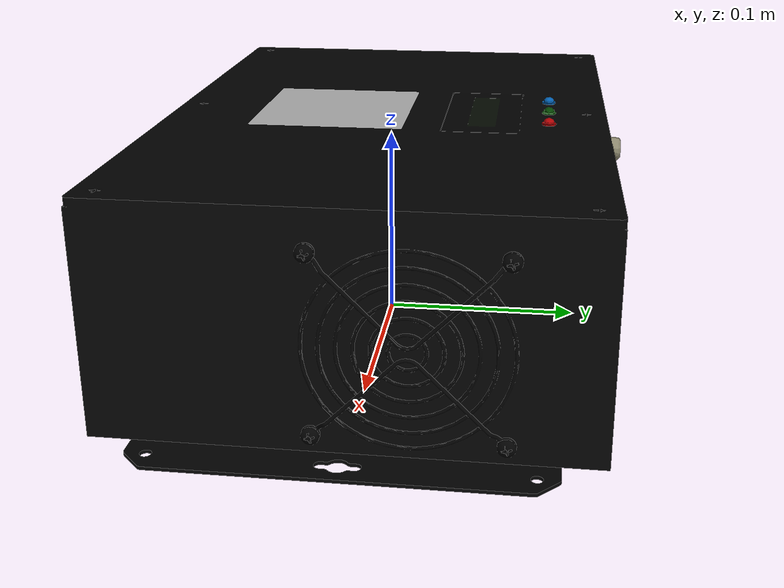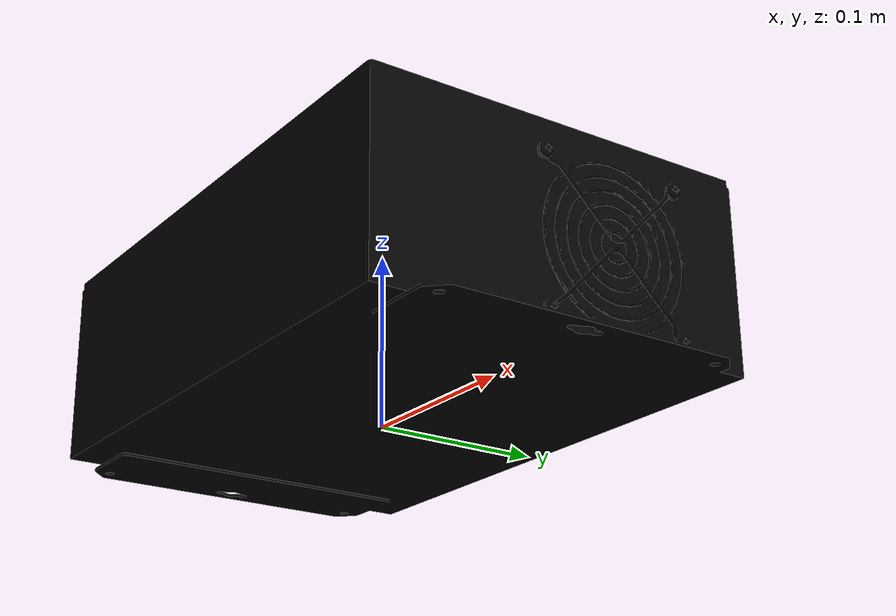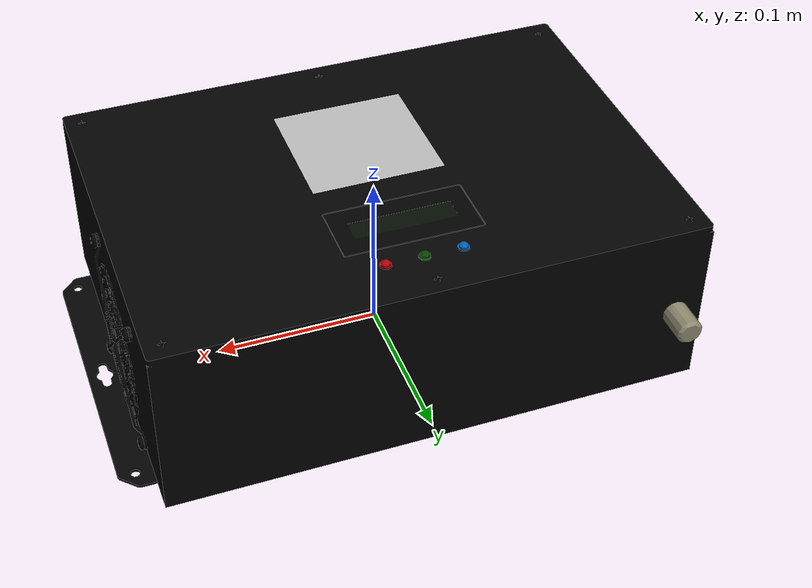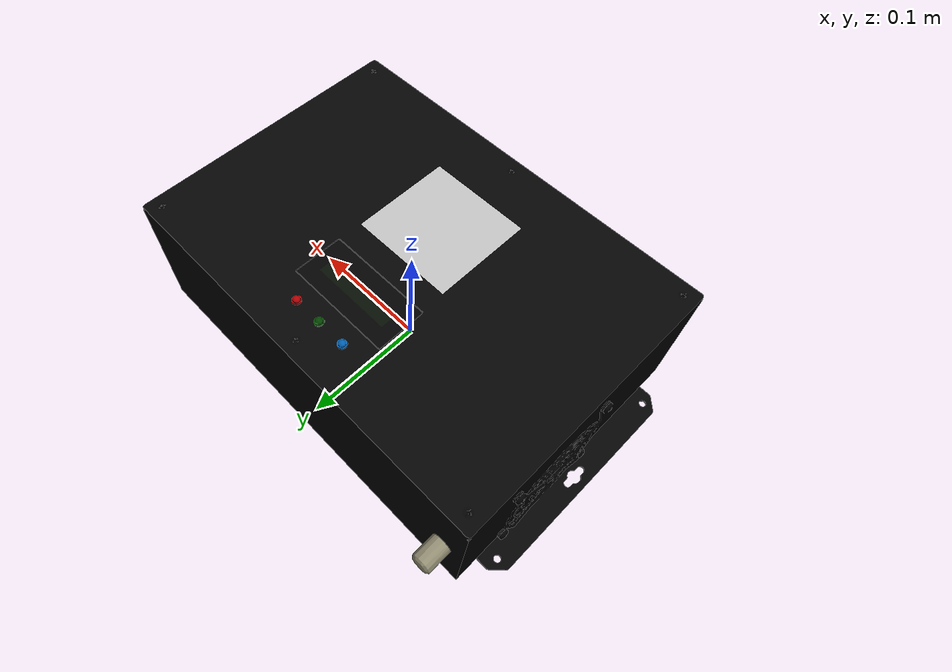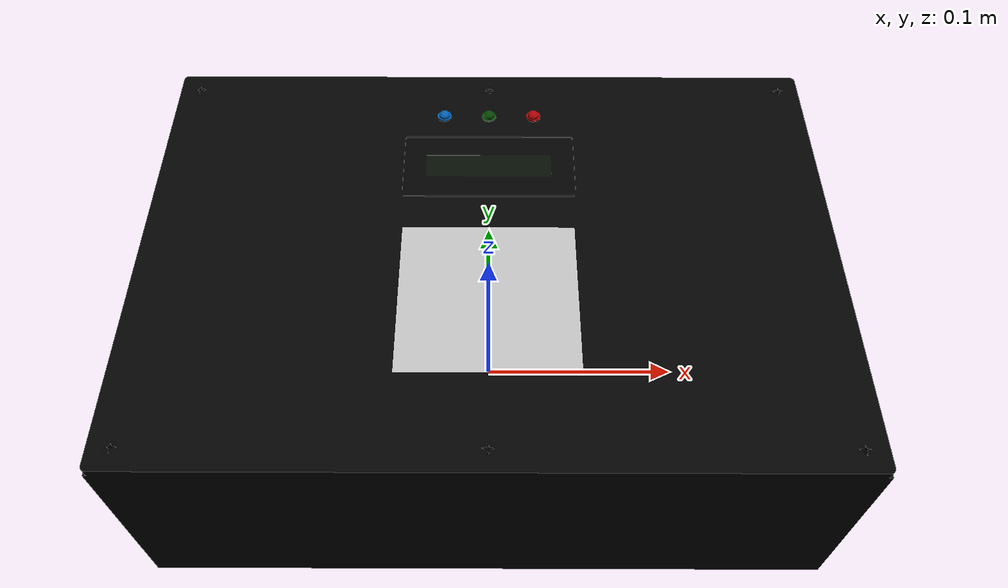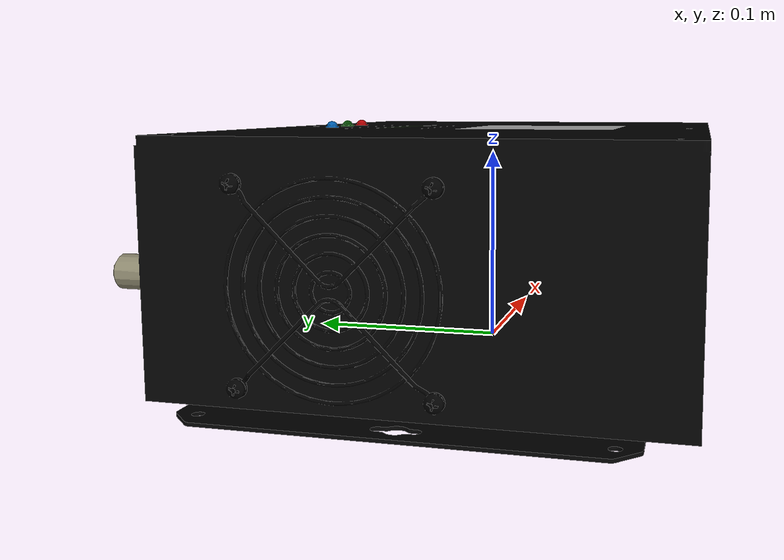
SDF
<?xml version="1.0" ?>
<sdf version="1.6">
  <model name="TR300">
    <static>true</static>
    <link name="link">
      <collision name="collision">
        <geometry>
          <mesh>
            <scale>1 1 1</scale>
            <uri>model://../meshes/TR300.dae</uri>
          </mesh>
        </geometry>
      </collision>
      <visual name="visual">
        <geometry>
          <mesh>
            <scale>1 1 1</scale>
            <uri>model://../meshes/TR300.dae</uri>
          </mesh>
        </geometry>
      </visual>
    </link>
  </model>
</sdf>
